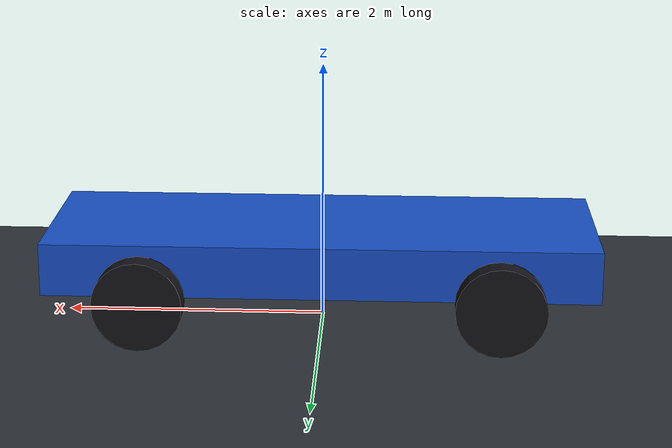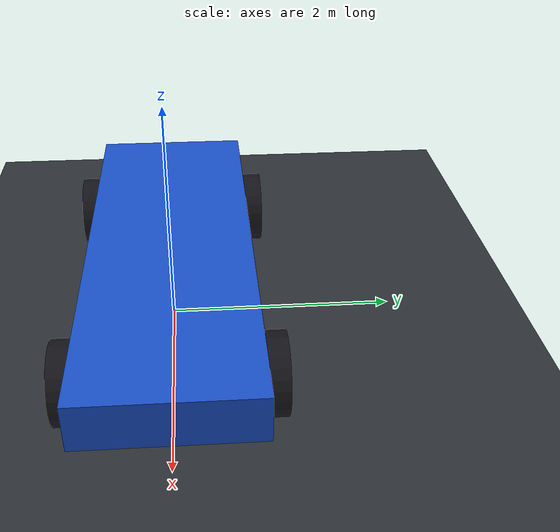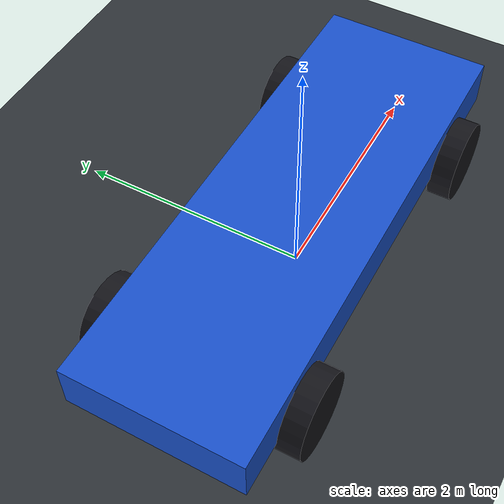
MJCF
<mujoco model="controller_learning_car">
  <compiler angle="radian" autolimits="true" inertiafromgeom="true"/>

  <option
    timestep="0.005"
    gravity="0 0 -9.81"
    integrator="implicitfast"
    solver="Newton"
    iterations="20"
    ls_iterations="5"
    cone="elliptic"
    jacobian="dense"
  >
    <flag autoreset="disable"/>
  </option>

  <default>
    <geom solref="0.03 1" solimp="0.9 0.95 0.001 0.5 2"/>
    <default class="wheel">
      <joint type="hinge" axis="0 1 0" damping="0.2" armature="0.2"/>
      <geom
        type="cylinder"
        size="0.34 0.1"
        zaxis="0 1 0"
        mass="20"
        contype="2"
        conaffinity="1"
        condim="3"
        friction="1.2 0.005 0.0001"
        priority="1"
        rgba="0.08 0.08 0.1 1"
      />
    </default>
    <default class="steering">
      <joint
        type="hinge"
        axis="0 0 1"
        range="-0.6 0.6"
        damping="20"
        armature="0.5"
      />
    </default>
  </default>

  <worldbody>
    <light name="sun" pos="0 0 10" dir="0 0 -1" diffuse="0.8 0.8 0.8"/>
    <geom
      name="ground"
      type="plane"
      size="1000 1000 0.1"
      contype="1"
      conaffinity="6"
      condim="3"
      friction="1.2 0.005 0.0001"
      rgba="0.18 0.2 0.22 1"
    />

    <body name="chassis" pos="0 0 0.56">
      <freejoint name="chassis_free"/>
      <geom
        name="chassis_collision"
        type="box"
        size="2.1 0.72 0.2"
        mass="1120"
        contype="4"
        conaffinity="1"
        friction="0.8 0.005 0.0001"
        rgba="0.1 0.32 0.8 1"
      />
      <site name="rear_axle_reference" pos="-1.35 0 -0.22" size="0.025" rgba="1 0.2 0.2 1"/>

      <body name="front_left_wheel_body" pos="1.35 0.8 -0.22">
        <joint name="front_left_steer" class="steering"/>
        <joint name="front_left_wheel" class="wheel"/>
        <geom name="front_left_wheel_geom" class="wheel"/>
      </body>

      <body name="front_right_wheel_body" pos="1.35 -0.8 -0.22">
        <joint name="front_right_steer" class="steering"/>
        <joint name="front_right_wheel" class="wheel"/>
        <geom name="front_right_wheel_geom" class="wheel"/>
      </body>

      <body name="rear_left_wheel_body" pos="-1.35 0.8 -0.22">
        <joint name="rear_left_wheel" class="wheel"/>
        <geom name="rear_left_wheel_geom" class="wheel"/>
      </body>

      <body name="rear_right_wheel_body" pos="-1.35 -0.8 -0.22">
        <joint name="rear_right_wheel" class="wheel"/>
        <geom name="rear_right_wheel_geom" class="wheel"/>
      </body>
    </body>
  </worldbody>

  <actuator>
    <position
      name="front_left_steer_position"
      joint="front_left_steer"
      kp="8000"
      kv="400"
      ctrlrange="-0.6 0.6"
      forcerange="-5000 5000"
    />
    <position
      name="front_right_steer_position"
      joint="front_right_steer"
      kp="8000"
      kv="400"
      ctrlrange="-0.6 0.6"
      forcerange="-5000 5000"
    />
    <motor
      name="front_left_drive"
      joint="front_left_wheel"
      ctrlrange="-816 816"
      forcerange="-816 816"
    />
    <motor
      name="front_right_drive"
      joint="front_right_wheel"
      ctrlrange="-816 816"
      forcerange="-816 816"
    />
    <motor
      name="rear_left_drive"
      joint="rear_left_wheel"
      ctrlrange="-816 816"
      forcerange="-816 816"
    />
    <motor
      name="rear_right_drive"
      joint="rear_right_wheel"
      ctrlrange="-816 816"
      forcerange="-816 816"
    />
  </actuator>
</mujoco>
